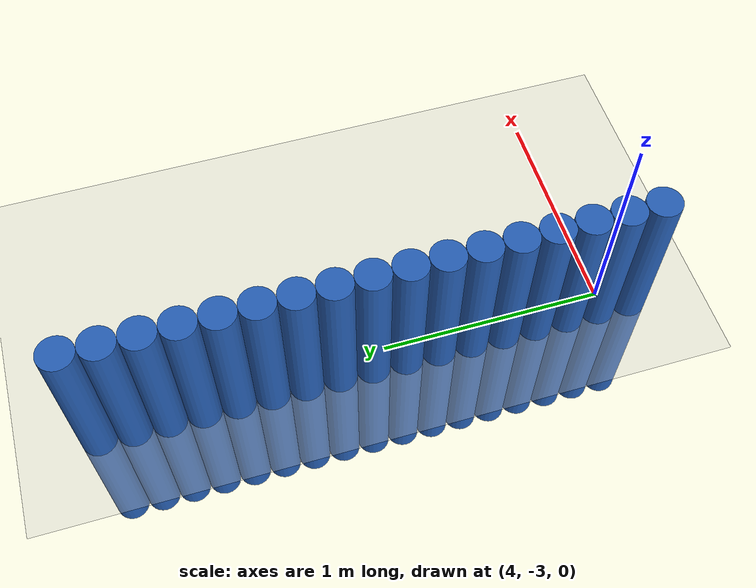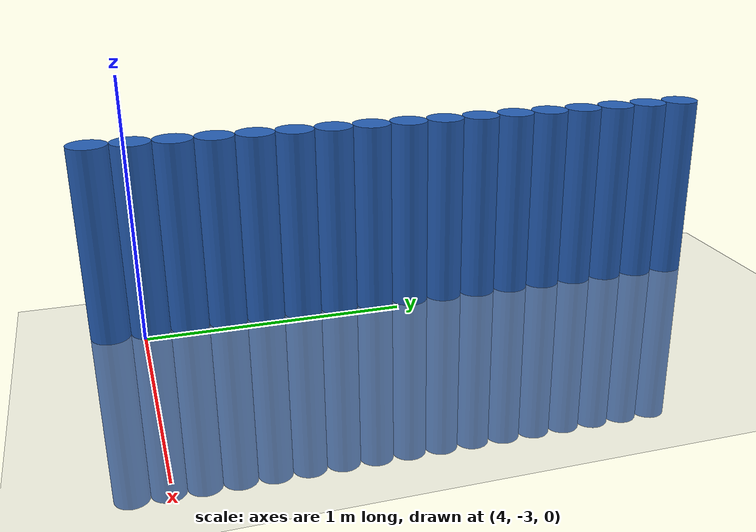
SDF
<sdf version="1.6">
 <world name="default">
  <model name="ground_plane">
   <static>1</static>
   <link name="link">
    <collision name="collision">
     <geometry><plane><normal>0 0 1</normal><size>100 100</size></plane></geometry>
     <surface><friction><ode><mu>100</mu><mu2>50</mu2></ode></friction></surface>
    </collision>
    <visual name="visual">
     <cast_shadows>0</cast_shadows>
     <geometry><plane><normal>0 0 1</normal><size>100 100</size></plane></geometry>
     <material>
      <script><uri>file://media/materials/scripts/gazebo.material</uri><name>Gazebo/Grey</name></script>
     </material>
    </visual>
   </link>
  </model>
  <model name="unit_cylinder_72">
   <static>1</static>
   <pose>3.925000 -3.125000 0.000000 0.000000 0.000000 0.000000</pose>
   <link name="link">
    <inertial>
     <mass>1</mass>
     <inertia><ixx>0.145833</ixx><ixy>0</ixy><ixz>0</ixz><iyy>0.145833</iyy><iyz>0</iyz><izz>0.125</izz></inertia>
    </inertial>
    <collision name="collision">
     <geometry><cylinder><radius>0.075000</radius><length>1.5</length></cylinder></geometry>
    </collision>
    <visual name="visual">
     <geometry><cylinder><radius>0.075000</radius><length>1.5</length></cylinder></geometry>
     <material>
      <ambient>0.152000 0.379000 0.720000 1</ambient>
      <diffuse>0.152000 0.379000 0.720000 1</diffuse>
     </material>
     <material>
      <script><name>Gazebo/Grey</name><uri>file://media/materials/scripts/gazebo.material</uri></script>
     </material>
    </visual>
   </link>
  </model>
  <model name="unit_cylinder_74">
   <static>1</static>
   <pose>3.925000 -2.975000 0.000000 0.000000 0.000000 0.000000</pose>
   <link name="link">
    <inertial>
     <mass>1</mass>
     <inertia><ixx>0.145833</ixx><ixy>0</ixy><ixz>0</ixz><iyy>0.145833</iyy><iyz>0</iyz><izz>0.125</izz></inertia>
    </inertial>
    <collision name="collision">
     <geometry><cylinder><radius>0.075000</radius><length>1.5</length></cylinder></geometry>
    </collision>
    <visual name="visual">
     <geometry><cylinder><radius>0.075000</radius><length>1.5</length></cylinder></geometry>
     <material>
      <ambient>0.152000 0.379000 0.720000 1</ambient>
      <diffuse>0.152000 0.379000 0.720000 1</diffuse>
     </material>
     <material>
      <script><name>Gazebo/Grey</name><uri>file://media/materials/scripts/gazebo.material</uri></script>
     </material>
    </visual>
   </link>
  </model>
  <model name="unit_cylinder_76">
   <static>1</static>
   <pose>3.925000 -2.825000 0.000000 0.000000 0.000000 0.000000</pose>
   <link name="link">
    <inertial>
     <mass>1</mass>
     <inertia><ixx>0.145833</ixx><ixy>0</ixy><ixz>0</ixz><iyy>0.145833</iyy><iyz>0</iyz><izz>0.125</izz></inertia>
    </inertial>
    <collision name="collision">
     <geometry><cylinder><radius>0.075000</radius><length>1.5</length></cylinder></geometry>
    </collision>
    <visual name="visual">
     <geometry><cylinder><radius>0.075000</radius><length>1.5</length></cylinder></geometry>
     <material>
      <ambient>0.152000 0.379000 0.720000 1</ambient>
      <diffuse>0.152000 0.379000 0.720000 1</diffuse>
     </material>
     <material>
      <script><name>Gazebo/Grey</name><uri>file://media/materials/scripts/gazebo.material</uri></script>
     </material>
    </visual>
   </link>
  </model>
  <model name="unit_cylinder_78">
   <static>1</static>
   <pose>3.925000 -2.675000 0.000000 0.000000 0.000000 0.000000</pose>
   <link name="link">
    <inertial>
     <mass>1</mass>
     <inertia><ixx>0.145833</ixx><ixy>0</ixy><ixz>0</ixz><iyy>0.145833</iyy><iyz>0</iyz><izz>0.125</izz></inertia>
    </inertial>
    <collision name="collision">
     <geometry><cylinder><radius>0.075000</radius><length>1.5</length></cylinder></geometry>
    </collision>
    <visual name="visual">
     <geometry><cylinder><radius>0.075000</radius><length>1.5</length></cylinder></geometry>
     <material>
      <ambient>0.152000 0.379000 0.720000 1</ambient>
      <diffuse>0.152000 0.379000 0.720000 1</diffuse>
     </material>
     <material>
      <script><name>Gazebo/Grey</name><uri>file://media/materials/scripts/gazebo.material</uri></script>
     </material>
    </visual>
   </link>
  </model>
  <model name="unit_cylinder_80">
   <static>1</static>
   <pose>3.925000 -2.525000 0.000000 0.000000 0.000000 0.000000</pose>
   <link name="link">
    <inertial>
     <mass>1</mass>
     <inertia><ixx>0.145833</ixx><ixy>0</ixy><ixz>0</ixz><iyy>0.145833</iyy><iyz>0</iyz><izz>0.125</izz></inertia>
    </inertial>
    <collision name="collision">
     <geometry><cylinder><radius>0.075000</radius><length>1.5</length></cylinder></geometry>
    </collision>
    <visual name="visual">
     <geometry><cylinder><radius>0.075000</radius><length>1.5</length></cylinder></geometry>
     <material>
      <ambient>0.152000 0.379000 0.720000 1</ambient>
      <diffuse>0.152000 0.379000 0.720000 1</diffuse>
     </material>
     <material>
      <script><name>Gazebo/Grey</name><uri>file://media/materials/scripts/gazebo.material</uri></script>
     </material>
    </visual>
   </link>
  </model>
  <model name="unit_cylinder_82">
   <static>1</static>
   <pose>3.925000 -2.375000 0.000000 0.000000 0.000000 0.000000</pose>
   <link name="link">
    <inertial>
     <mass>1</mass>
     <inertia><ixx>0.145833</ixx><ixy>0</ixy><ixz>0</ixz><iyy>0.145833</iyy><iyz>0</iyz><izz>0.125</izz></inertia>
    </inertial>
    <collision name="collision">
     <geometry><cylinder><radius>0.075000</radius><length>1.5</length></cylinder></geometry>
    </collision>
    <visual name="visual">
     <geometry><cylinder><radius>0.075000</radius><length>1.5</length></cylinder></geometry>
     <material>
      <ambient>0.152000 0.379000 0.720000 1</ambient>
      <diffuse>0.152000 0.379000 0.720000 1</diffuse>
     </material>
     <material>
      <script><name>Gazebo/Grey</name><uri>file://media/materials/scripts/gazebo.material</uri></script>
     </material>
    </visual>
   </link>
  </model>
  <model name="unit_cylinder_84">
   <static>1</static>
   <pose>3.925000 -2.225000 0.000000 0.000000 0.000000 0.000000</pose>
   <link name="link">
    <inertial>
     <mass>1</mass>
     <inertia><ixx>0.145833</ixx><ixy>0</ixy><ixz>0</ixz><iyy>0.145833</iyy><iyz>0</iyz><izz>0.125</izz></inertia>
    </inertial>
    <collision name="collision">
     <geometry><cylinder><radius>0.075000</radius><length>1.5</length></cylinder></geometry>
    </collision>
    <visual name="visual">
     <geometry><cylinder><radius>0.075000</radius><length>1.5</length></cylinder></geometry>
     <material>
      <ambient>0.152000 0.379000 0.720000 1</ambient>
      <diffuse>0.152000 0.379000 0.720000 1</diffuse>
     </material>
     <material>
      <script><name>Gazebo/Grey</name><uri>file://media/materials/scripts/gazebo.material</uri></script>
     </material>
    </visual>
   </link>
  </model>
  <model name="unit_cylinder_86">
   <static>1</static>
   <pose>3.925000 -2.075000 0.000000 0.000000 0.000000 0.000000</pose>
   <link name="link">
    <inertial>
     <mass>1</mass>
     <inertia><ixx>0.145833</ixx><ixy>0</ixy><ixz>0</ixz><iyy>0.145833</iyy><iyz>0</iyz><izz>0.125</izz></inertia>
    </inertial>
    <collision name="collision">
     <geometry><cylinder><radius>0.075000</radius><length>1.5</length></cylinder></geometry>
    </collision>
    <visual name="visual">
     <geometry><cylinder><radius>0.075000</radius><length>1.5</length></cylinder></geometry>
     <material>
      <ambient>0.152000 0.379000 0.720000 1</ambient>
      <diffuse>0.152000 0.379000 0.720000 1</diffuse>
     </material>
     <material>
      <script><name>Gazebo/Grey</name><uri>file://media/materials/scripts/gazebo.material</uri></script>
     </material>
    </visual>
   </link>
  </model>
  <model name="unit_cylinder_88">
   <static>1</static>
   <pose>3.925000 -1.925000 0.000000 0.000000 0.000000 0.000000</pose>
   <link name="link">
    <inertial>
     <mass>1</mass>
     <inertia><ixx>0.145833</ixx><ixy>0</ixy><ixz>0</ixz><iyy>0.145833</iyy><iyz>0</iyz><izz>0.125</izz></inertia>
    </inertial>
    <collision name="collision">
     <geometry><cylinder><radius>0.075000</radius><length>1.5</length></cylinder></geometry>
    </collision>
    <visual name="visual">
     <geometry><cylinder><radius>0.075000</radius><length>1.5</length></cylinder></geometry>
     <material>
      <ambient>0.152000 0.379000 0.720000 1</ambient>
      <diffuse>0.152000 0.379000 0.720000 1</diffuse>
     </material>
     <material>
      <script><name>Gazebo/Grey</name><uri>file://media/materials/scripts/gazebo.material</uri></script>
     </material>
    </visual>
   </link>
  </model>
  <model name="unit_cylinder_90">
   <static>1</static>
   <pose>3.925000 -1.775000 0.000000 0.000000 0.000000 0.000000</pose>
   <link name="link">
    <inertial>
     <mass>1</mass>
     <inertia><ixx>0.145833</ixx><ixy>0</ixy><ixz>0</ixz><iyy>0.145833</iyy><iyz>0</iyz><izz>0.125</izz></inertia>
    </inertial>
    <collision name="collision">
     <geometry><cylinder><radius>0.075000</radius><length>1.5</length></cylinder></geometry>
    </collision>
    <visual name="visual">
     <geometry><cylinder><radius>0.075000</radius><length>1.5</length></cylinder></geometry>
     <material>
      <ambient>0.152000 0.379000 0.720000 1</ambient>
      <diffuse>0.152000 0.379000 0.720000 1</diffuse>
     </material>
     <material>
      <script><name>Gazebo/Grey</name><uri>file://media/materials/scripts/gazebo.material</uri></script>
     </material>
    </visual>
   </link>
  </model>
  <model name="unit_cylinder_92">
   <static>1</static>
   <pose>3.925000 -1.625000 0.000000 0.000000 0.000000 0.000000</pose>
   <link name="link">
    <inertial>
     <mass>1</mass>
     <inertia><ixx>0.145833</ixx><ixy>0</ixy><ixz>0</ixz><iyy>0.145833</iyy><iyz>0</iyz><izz>0.125</izz></inertia>
    </inertial>
    <collision name="collision">
     <geometry><cylinder><radius>0.075000</radius><length>1.5</length></cylinder></geometry>
    </collision>
    <visual name="visual">
     <geometry><cylinder><radius>0.075000</radius><length>1.5</length></cylinder></geometry>
     <material>
      <ambient>0.152000 0.379000 0.720000 1</ambient>
      <diffuse>0.152000 0.379000 0.720000 1</diffuse>
     </material>
     <material>
      <script><name>Gazebo/Grey</name><uri>file://media/materials/scripts/gazebo.material</uri></script>
     </material>
    </visual>
   </link>
  </model>
  <model name="unit_cylinder_94">
   <static>1</static>
   <pose>3.925000 -1.475000 0.000000 0.000000 0.000000 0.000000</pose>
   <link name="link">
    <inertial>
     <mass>1</mass>
     <inertia><ixx>0.145833</ixx><ixy>0</ixy><ixz>0</ixz><iyy>0.145833</iyy><iyz>0</iyz><izz>0.125</izz></inertia>
    </inertial>
    <collision name="collision">
     <geometry><cylinder><radius>0.075000</radius><length>1.5</length></cylinder></geometry>
    </collision>
    <visual name="visual">
     <geometry><cylinder><radius>0.075000</radius><length>1.5</length></cylinder></geometry>
     <material>
      <ambient>0.152000 0.379000 0.720000 1</ambient>
      <diffuse>0.152000 0.379000 0.720000 1</diffuse>
     </material>
     <material>
      <script><name>Gazebo/Grey</name><uri>file://media/materials/scripts/gazebo.material</uri></script>
     </material>
    </visual>
   </link>
  </model>
  <model name="unit_cylinder_96">
   <static>1</static>
   <pose>3.925000 -1.325000 0.000000 0.000000 0.000000 0.000000</pose>
   <link name="link">
    <inertial>
     <mass>1</mass>
     <inertia><ixx>0.145833</ixx><ixy>0</ixy><ixz>0</ixz><iyy>0.145833</iyy><iyz>0</iyz><izz>0.125</izz></inertia>
    </inertial>
    <collision name="collision">
     <geometry><cylinder><radius>0.075000</radius><length>1.5</length></cylinder></geometry>
    </collision>
    <visual name="visual">
     <geometry><cylinder><radius>0.075000</radius><length>1.5</length></cylinder></geometry>
     <material>
      <ambient>0.152000 0.379000 0.720000 1</ambient>
      <diffuse>0.152000 0.379000 0.720000 1</diffuse>
     </material>
     <material>
      <script><name>Gazebo/Grey</name><uri>file://media/materials/scripts/gazebo.material</uri></script>
     </material>
    </visual>
   </link>
  </model>
  <model name="unit_cylinder_98">
   <static>1</static>
   <pose>3.925000 -1.175000 0.000000 0.000000 0.000000 0.000000</pose>
   <link name="link">
    <inertial>
     <mass>1</mass>
     <inertia><ixx>0.145833</ixx><ixy>0</ixy><ixz>0</ixz><iyy>0.145833</iyy><iyz>0</iyz><izz>0.125</izz></inertia>
    </inertial>
    <collision name="collision">
     <geometry><cylinder><radius>0.075000</radius><length>1.5</length></cylinder></geometry>
    </collision>
    <visual name="visual">
     <geometry><cylinder><radius>0.075000</radius><length>1.5</length></cylinder></geometry>
     <material>
      <ambient>0.152000 0.379000 0.720000 1</ambient>
      <diffuse>0.152000 0.379000 0.720000 1</diffuse>
     </material>
     <material>
      <script><name>Gazebo/Grey</name><uri>file://media/materials/scripts/gazebo.material</uri></script>
     </material>
    </visual>
   </link>
  </model>
  <model name="unit_cylinder_100">
   <static>1</static>
   <pose>3.925000 -1.025000 0.000000 0.000000 0.000000 0.000000</pose>
   <link name="link">
    <inertial>
     <mass>1</mass>
     <inertia><ixx>0.145833</ixx><ixy>0</ixy><ixz>0</ixz><iyy>0.145833</iyy><iyz>0</iyz><izz>0.125</izz></inertia>
    </inertial>
    <collision name="collision">
     <geometry><cylinder><radius>0.075000</radius><length>1.5</length></cylinder></geometry>
    </collision>
    <visual name="visual">
     <geometry><cylinder><radius>0.075000</radius><length>1.5</length></cylinder></geometry>
     <material>
      <ambient>0.152000 0.379000 0.720000 1</ambient>
      <diffuse>0.152000 0.379000 0.720000 1</diffuse>
     </material>
     <material>
      <script><name>Gazebo/Grey</name><uri>file://media/materials/scripts/gazebo.material</uri></script>
     </material>
    </visual>
   </link>
  </model>
  <model name="unit_cylinder_102">
   <static>1</static>
   <pose>3.925000 -0.875000 0.000000 0.000000 0.000000 0.000000</pose>
   <link name="link">
    <inertial>
     <mass>1</mass>
     <inertia><ixx>0.145833</ixx><ixy>0</ixy><ixz>0</ixz><iyy>0.145833</iyy><iyz>0</iyz><izz>0.125</izz></inertia>
    </inertial>
    <collision name="collision">
     <geometry><cylinder><radius>0.075000</radius><length>1.5</length></cylinder></geometry>
    </collision>
    <visual name="visual">
     <geometry><cylinder><radius>0.075000</radius><length>1.5</length></cylinder></geometry>
     <material>
      <ambient>0.152000 0.379000 0.720000 1</ambient>
      <diffuse>0.152000 0.379000 0.720000 1</diffuse>
     </material>
     <material>
      <script><name>Gazebo/Grey</name><uri>file://media/materials/scripts/gazebo.material</uri></script>
     </material>
    </visual>
   </link>
  </model>
  <model name="unit_cylinder_104">
   <static>1</static>
   <pose>3.925000 -0.725000 0.000000 0.000000 0.000000 0.000000</pose>
   <link name="link">
    <inertial>
     <mass>1</mass>
     <inertia><ixx>0.145833</ixx><ixy>0</ixy><ixz>0</ixz><iyy>0.145833</iyy><iyz>0</iyz><izz>0.125</izz></inertia>
    </inertial>
    <collision name="collision">
     <geometry><cylinder><radius>0.075000</radius><length>1.5</length></cylinder></geometry>
    </collision>
    <visual name="visual">
     <geometry><cylinder><radius>0.075000</radius><length>1.5</length></cylinder></geometry>
     <material>
      <ambient>0.152000 0.379000 0.720000 1</ambient>
      <diffuse>0.152000 0.379000 0.720000 1</diffuse>
     </material>
     <material>
      <script><name>Gazebo/Grey</name><uri>file://media/materials/scripts/gazebo.material</uri></script>
     </material>
    </visual>
   </link>
  </model>
  <model name="unit_cylinder_464">
   <static>1</static>
   <pose>3.925000 -1.925000 0.000000 0.000000 0.000000 0.000000</pose>
   <link name="link">
    <inertial>
     <mass>1</mass>
     <inertia><ixx>0.145833</ixx><ixy>0</ixy><ixz>0</ixz><iyy>0.145833</iyy><iyz>0</iyz><izz>0.125</izz></inertia>
    </inertial>
    <collision name="collision">
     <geometry><cylinder><radius>0.075000</radius><length>1.5</length></cylinder></geometry>
    </collision>
    <visual name="visual">
     <geometry><cylinder><radius>0.075000</radius><length>1.5</length></cylinder></geometry>
     <material>
      <ambient>0.152000 0.379000 0.720000 1</ambient>
      <diffuse>0.152000 0.379000 0.720000 1</diffuse>
     </material>
     <material>
      <script><name>Gazebo/Grey</name><uri>file://media/materials/scripts/gazebo.material</uri></script>
     </material>
    </visual>
   </link>
  </model>
  <model name="unit_cylinder_465">
   <static>1</static>
   <pose>3.925000 -1.775000 0.000000 0.000000 0.000000 0.000000</pose>
   <link name="link">
    <inertial>
     <mass>1</mass>
     <inertia><ixx>0.145833</ixx><ixy>0</ixy><ixz>0</ixz><iyy>0.145833</iyy><iyz>0</iyz><izz>0.125</izz></inertia>
    </inertial>
    <collision name="collision">
     <geometry><cylinder><radius>0.075000</radius><length>1.5</length></cylinder></geometry>
    </collision>
    <visual name="visual">
     <geometry><cylinder><radius>0.075000</radius><length>1.5</length></cylinder></geometry>
     <material>
      <ambient>0.152000 0.379000 0.720000 1</ambient>
      <diffuse>0.152000 0.379000 0.720000 1</diffuse>
     </material>
     <material>
      <script><name>Gazebo/Grey</name><uri>file://media/materials/scripts/gazebo.material</uri></script>
     </material>
    </visual>
   </link>
  </model>
  <model name="unit_cylinder_466">
   <static>1</static>
   <pose>3.925000 -1.625000 0.000000 0.000000 0.000000 0.000000</pose>
   <link name="link">
    <inertial>
     <mass>1</mass>
     <inertia><ixx>0.145833</ixx><ixy>0</ixy><ixz>0</ixz><iyy>0.145833</iyy><iyz>0</iyz><izz>0.125</izz></inertia>
    </inertial>
    <collision name="collision">
     <geometry><cylinder><radius>0.075000</radius><length>1.5</length></cylinder></geometry>
    </collision>
    <visual name="visual">
     <geometry><cylinder><radius>0.075000</radius><length>1.5</length></cylinder></geometry>
     <material>
      <ambient>0.152000 0.379000 0.720000 1</ambient>
      <diffuse>0.152000 0.379000 0.720000 1</diffuse>
     </material>
     <material>
      <script><name>Gazebo/Grey</name><uri>file://media/materials/scripts/gazebo.material</uri></script>
     </material>
    </visual>
   </link>
  </model>
  <model name="unit_cylinder_467">
   <static>1</static>
   <pose>3.925000 -1.475000 0.000000 0.000000 0.000000 0.000000</pose>
   <link name="link">
    <inertial>
     <mass>1</mass>
     <inertia><ixx>0.145833</ixx><ixy>0</ixy><ixz>0</ixz><iyy>0.145833</iyy><iyz>0</iyz><izz>0.125</izz></inertia>
    </inertial>
    <collision name="collision">
     <geometry><cylinder><radius>0.075000</radius><length>1.5</length></cylinder></geometry>
    </collision>
    <visual name="visual">
     <geometry><cylinder><radius>0.075000</radius><length>1.5</length></cylinder></geometry>
     <material>
      <ambient>0.152000 0.379000 0.720000 1</ambient>
      <diffuse>0.152000 0.379000 0.720000 1</diffuse>
     </material>
     <material>
      <script><name>Gazebo/Grey</name><uri>file://media/materials/scripts/gazebo.material</uri></script>
     </material>
    </visual>
   </link>
  </model>
  <model name="unit_cylinder_468">
   <static>1</static>
   <pose>3.925000 -1.325000 0.000000 0.000000 0.000000 0.000000</pose>
   <link name="link">
    <inertial>
     <mass>1</mass>
     <inertia><ixx>0.145833</ixx><ixy>0</ixy><ixz>0</ixz><iyy>0.145833</iyy><iyz>0</iyz><izz>0.125</izz></inertia>
    </inertial>
    <collision name="collision">
     <geometry><cylinder><radius>0.075000</radius><length>1.5</length></cylinder></geometry>
    </collision>
    <visual name="visual">
     <geometry><cylinder><radius>0.075000</radius><length>1.5</length></cylinder></geometry>
     <material>
      <ambient>0.152000 0.379000 0.720000 1</ambient>
      <diffuse>0.152000 0.379000 0.720000 1</diffuse>
     </material>
     <material>
      <script><name>Gazebo/Grey</name><uri>file://media/materials/scripts/gazebo.material</uri></script>
     </material>
    </visual>
   </link>
  </model>
  <model name="unit_cylinder_469">
   <static>1</static>
   <pose>3.925000 -1.175000 0.000000 0.000000 0.000000 0.000000</pose>
   <link name="link">
    <inertial>
     <mass>1</mass>
     <inertia><ixx>0.145833</ixx><ixy>0</ixy><ixz>0</ixz><iyy>0.145833</iyy><iyz>0</iyz><izz>0.125</izz></inertia>
    </inertial>
    <collision name="collision">
     <geometry><cylinder><radius>0.075000</radius><length>1.5</length></cylinder></geometry>
    </collision>
    <visual name="visual">
     <geometry><cylinder><radius>0.075000</radius><length>1.5</length></cylinder></geometry>
     <material>
      <ambient>0.152000 0.379000 0.720000 1</ambient>
      <diffuse>0.152000 0.379000 0.720000 1</diffuse>
     </material>
     <material>
      <script><name>Gazebo/Grey</name><uri>file://media/materials/scripts/gazebo.material</uri></script>
     </material>
    </visual>
   </link>
  </model>
  <model name="unit_cylinder_470">
   <static>1</static>
   <pose>3.925000 -1.025000 0.000000 0.000000 0.000000 0.000000</pose>
   <link name="link">
    <inertial>
     <mass>1</mass>
     <inertia><ixx>0.145833</ixx><ixy>0</ixy><ixz>0</ixz><iyy>0.145833</iyy><iyz>0</iyz><izz>0.125</izz></inertia>
    </inertial>
    <collision name="collision">
     <geometry><cylinder><radius>0.075000</radius><length>1.5</length></cylinder></geometry>
    </collision>
    <visual name="visual">
     <geometry><cylinder><radius>0.075000</radius><length>1.5</length></cylinder></geometry>
     <material>
      <ambient>0.152000 0.379000 0.720000 1</ambient>
      <diffuse>0.152000 0.379000 0.720000 1</diffuse>
     </material>
     <material>
      <script><name>Gazebo/Grey</name><uri>file://media/materials/scripts/gazebo.material</uri></script>
     </material>
    </visual>
   </link>
  </model>
  <model name="unit_cylinder_471">
   <static>1</static>
   <pose>3.925000 -0.875000 0.000000 0.000000 0.000000 0.000000</pose>
   <link name="link">
    <inertial>
     <mass>1</mass>
     <inertia><ixx>0.145833</ixx><ixy>0</ixy><ixz>0</ixz><iyy>0.145833</iyy><iyz>0</iyz><izz>0.125</izz></inertia>
    </inertial>
    <collision name="collision">
     <geometry><cylinder><radius>0.075000</radius><length>1.5</length></cylinder></geometry>
    </collision>
    <visual name="visual">
     <geometry><cylinder><radius>0.075000</radius><length>1.5</length></cylinder></geometry>
     <material>
      <ambient>0.152000 0.379000 0.720000 1</ambient>
      <diffuse>0.152000 0.379000 0.720000 1</diffuse>
     </material>
     <material>
      <script><name>Gazebo/Grey</name><uri>file://media/materials/scripts/gazebo.material</uri></script>
     </material>
    </visual>
   </link>
  </model>
  <model name="unit_cylinder_472">
   <static>1</static>
   <pose>3.925000 -0.725000 0.000000 0.000000 0.000000 0.000000</pose>
   <link name="link">
    <inertial>
     <mass>1</mass>
     <inertia><ixx>0.145833</ixx><ixy>0</ixy><ixz>0</ixz><iyy>0.145833</iyy><iyz>0</iyz><izz>0.125</izz></inertia>
    </inertial>
    <collision name="collision">
     <geometry><cylinder><radius>0.075000</radius><length>1.5</length></cylinder></geometry>
    </collision>
    <visual name="visual">
     <geometry><cylinder><radius>0.075000</radius><length>1.5</length></cylinder></geometry>
     <material>
      <ambient>0.152000 0.379000 0.720000 1</ambient>
      <diffuse>0.152000 0.379000 0.720000 1</diffuse>
     </material>
     <material>
      <script><name>Gazebo/Grey</name><uri>file://media/materials/scripts/gazebo.material</uri></script>
     </material>
    </visual>
   </link>
  </model>
 </world>
</sdf>
